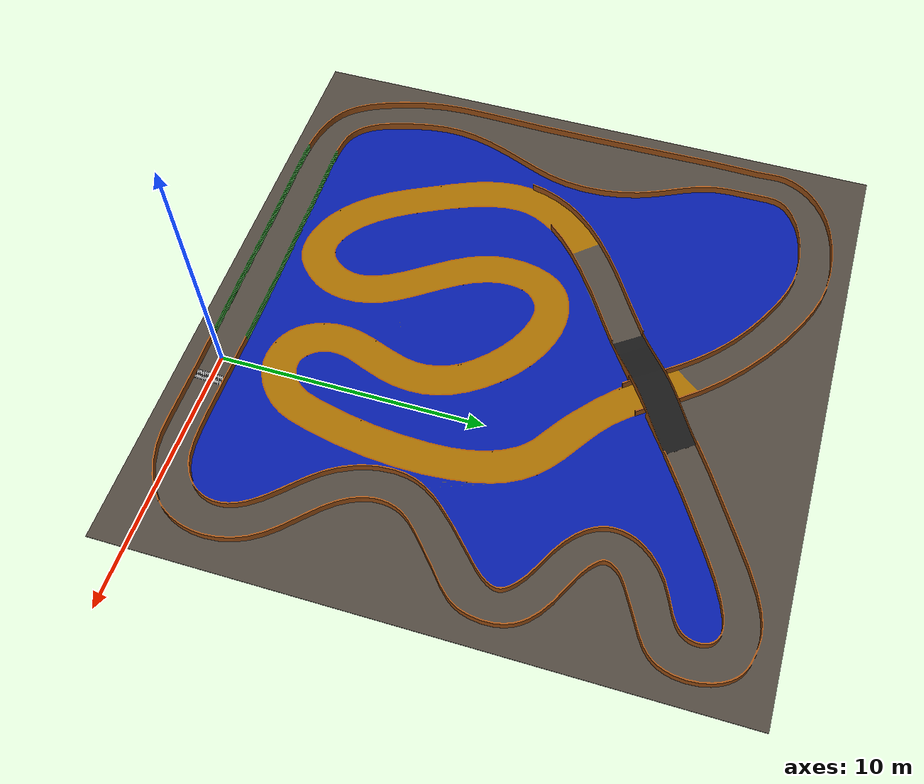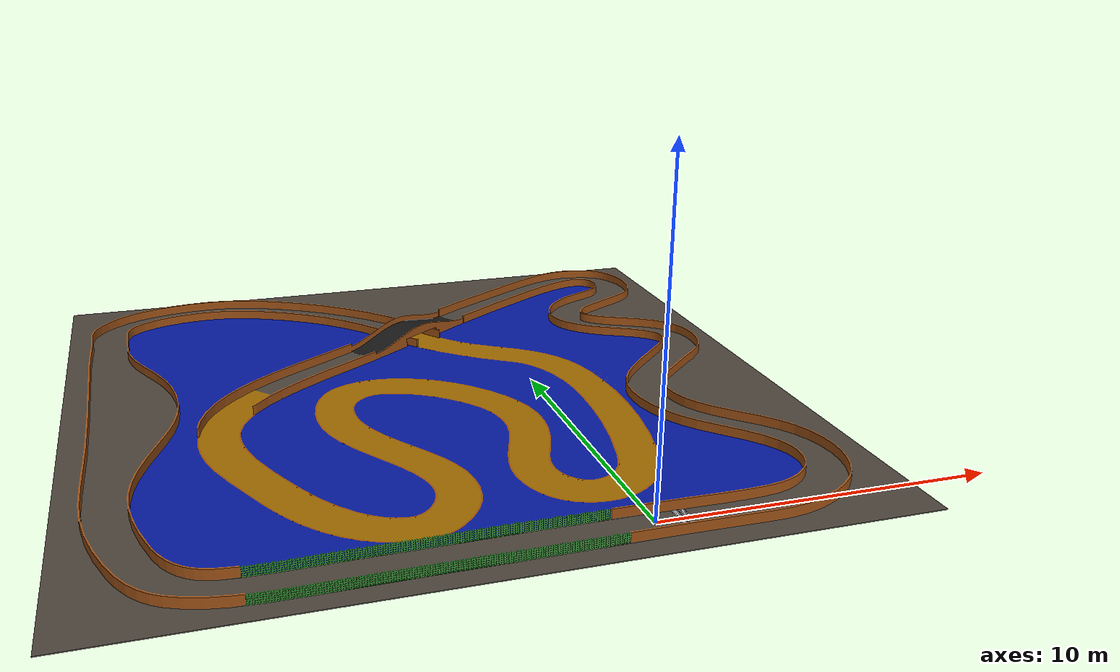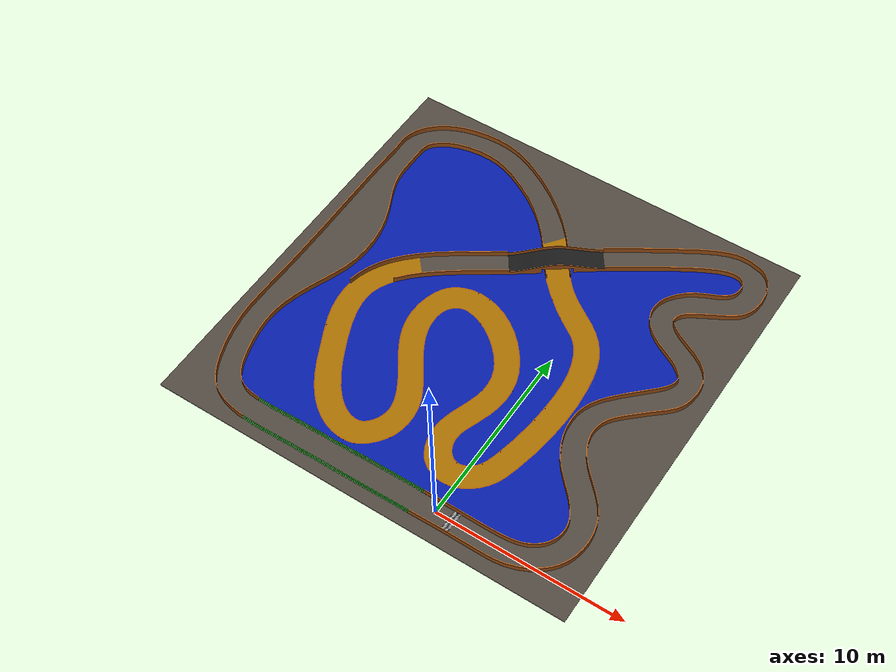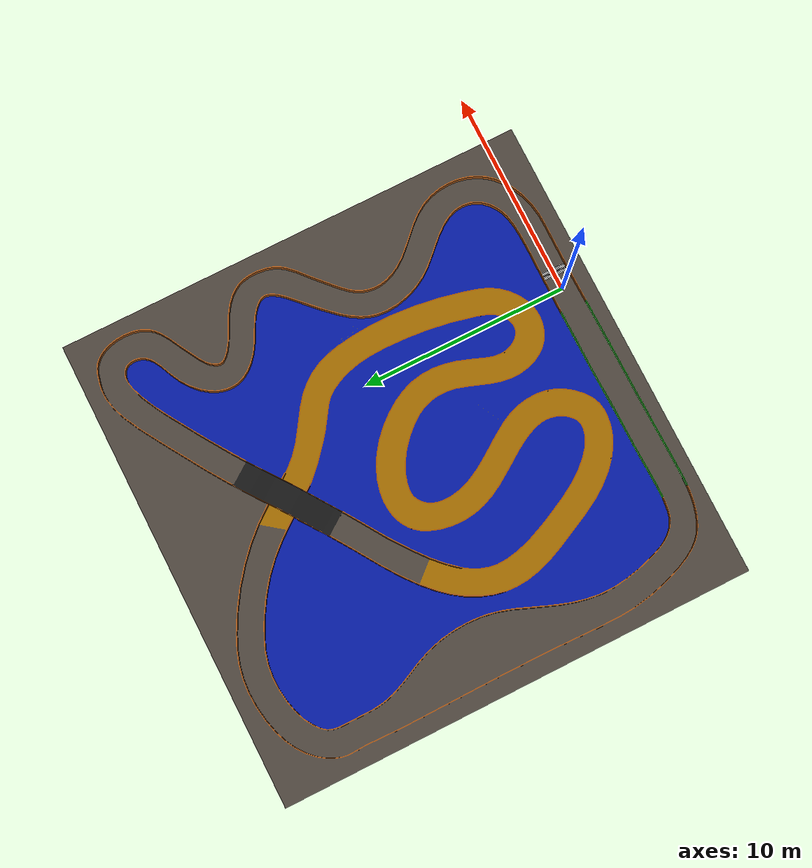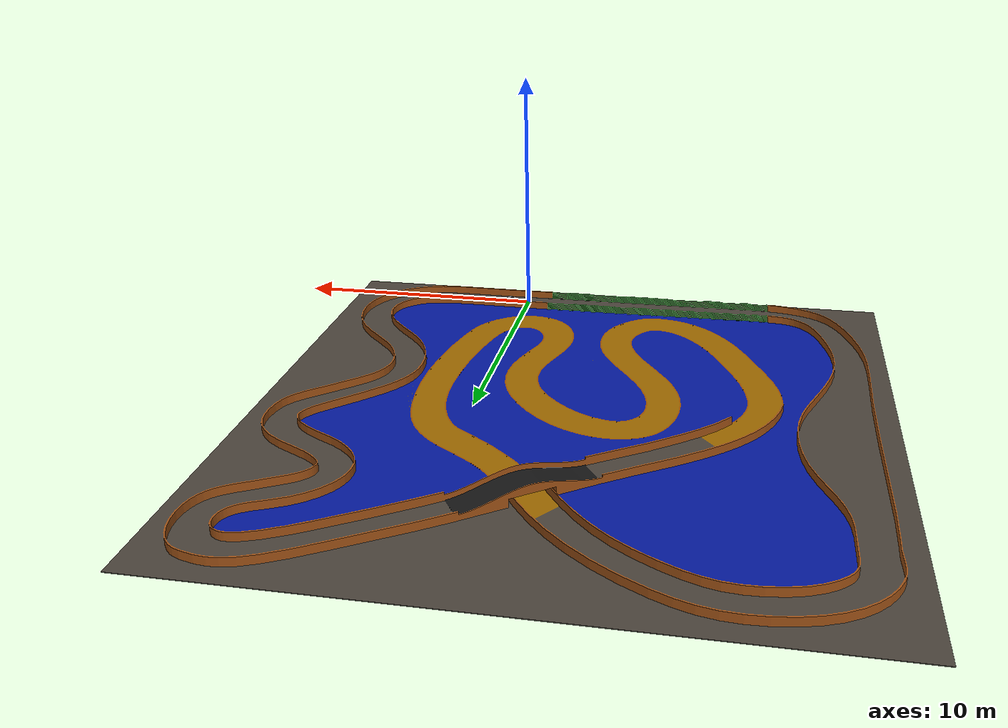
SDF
<?xml version="1.0"?>
<sdf version="1.4">
<world name="racecar_BWSI_2017">

  <scene>
    <ambient>0.5 0.5 0.5 1.0</ambient>
    <shadows>0</shadows>
  </scene>

  <include>
    <uri>model://sun</uri>
    <pose>0.0 0.0 15.0 0 0 0</pose>
    <cast_shadows>true</cast_shadows>
    <attenuation>
      <constant>0.5</constant>
      <linear>0.01</linear>
      <quadratic>0.0</quadratic>
      <range>100</range>
    </attenuation>
  </include>

  <light type="point" name="Light 1">
              <pose>0 0 15 0 0 0</pose>
              <diffuse>.9 .9 .9 1</diffuse>
              <specular>.1 .1 .1 1</specular>
              <attenuation>
              <constant>0.5</constant>
              <linear>0.01</linear>
              <quadratic>0.0</quadratic>
              <range>50</range>
              </attenuation>
              <direction>0 0 -1</direction>
              <cast_shadows>true</cast_shadows>
	</light>

    <model name="racecar_BWSI_2017">
      <pose>0 0 0 0 0 0</pose>
      <static>true</static>
      <link name="track">
        <collision name="collision">
            <geometry>
                <mesh><uri>model://racecar_description/meshes/BWSI2017.dae</uri></mesh>
            </geometry>
        </collision>
        <visual name="visual">
          <geometry>
            <mesh><uri>model://racecar_description/meshes/BWSI2017.dae</uri></mesh>
          </geometry>
        </visual>
      </link>
    </model>

</world>
</sdf>
